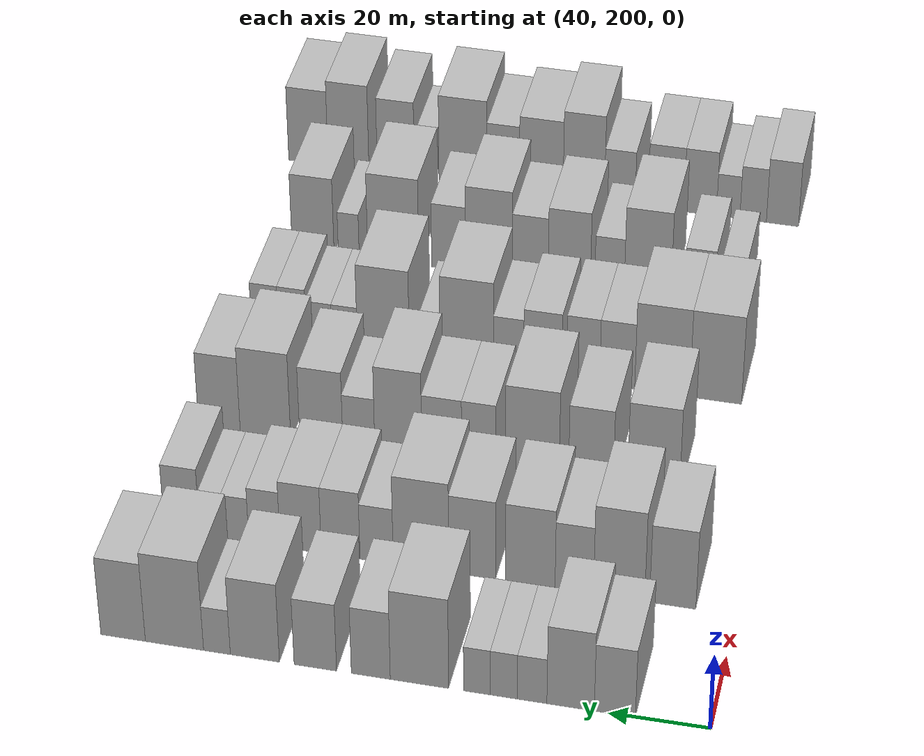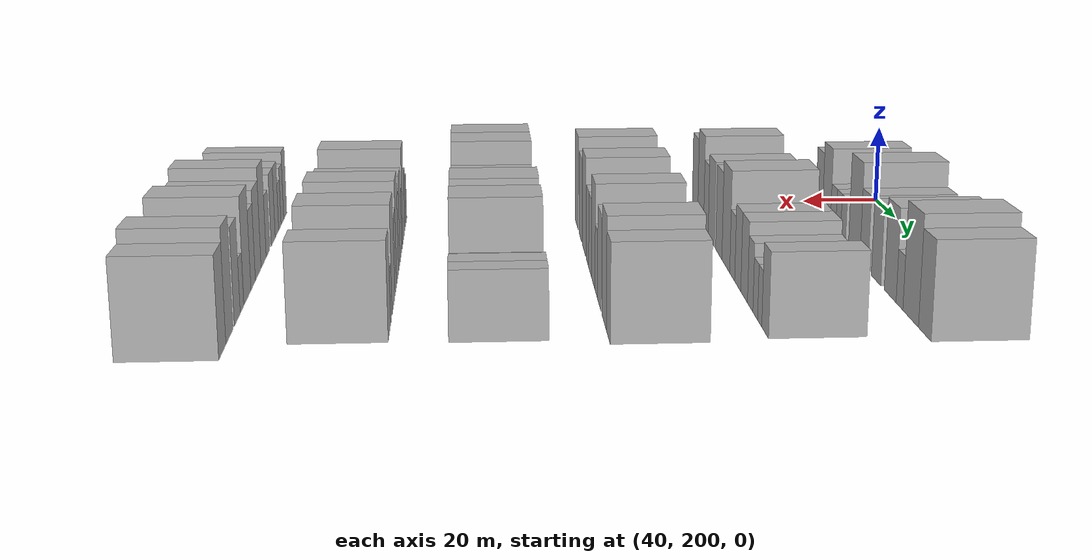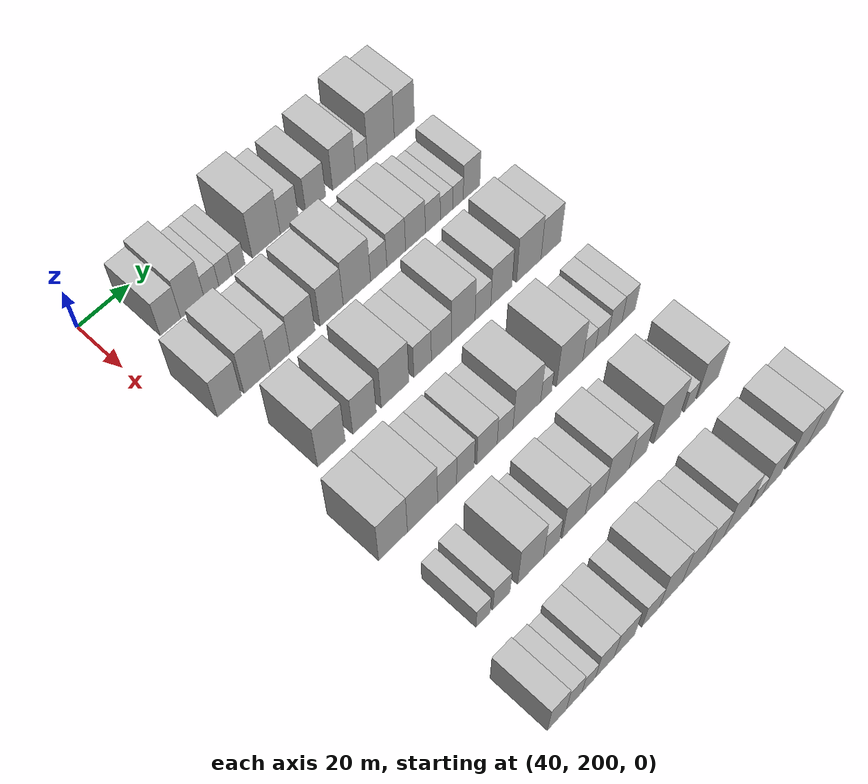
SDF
<sdf version="1.6">
 <world name="default">
  <model name="building_85">
   <static>1</static>
   <pose>50.0000 218.7896 0 0.000000 0.000000 0.000000</pose>
   <link name="link">
    <pose>0 0 9.00 0 0 0</pose>
    <collision name="collision"><geometry><box><size>20.0000 8.1058 18.0000</size></box></geometry></collision>
    <visual name="visual">
     <cast_shadows>0</cast_shadows>
     <geometry><box><size>20.0000 8.1058 18.0000</size></box></geometry>
     <material>
      <script>
       <uri>model://HANNAS_wall/materials/scripts</uri>
       <uri>model://HANNAS_wall/materials/textures</uri>
       <name>vrc/HANNAS_wall</name>
      </script>
     </material>
    </visual>
   </link>
  </model>
  <model name="building_86">
   <static>1</static>
   <pose>50.0000 227.5365 0 0.000000 0.000000 0.000000</pose>
   <link name="link">
    <pose>0 0 10.50 0 0 0</pose>
    <collision name="collision"><geometry><box><size>20.0000 9.3882 21.0000</size></box></geometry></collision>
    <visual name="visual">
     <cast_shadows>0</cast_shadows>
     <geometry><box><size>20.0000 9.3882 21.0000</size></box></geometry>
     <material>
      <script>
       <uri>model://HANNAS_wall/materials/scripts</uri>
       <uri>model://HANNAS_wall/materials/textures</uri>
       <name>vrc/HANNAS_wall</name>
      </script>
     </material>
    </visual>
   </link>
  </model>
  <model name="building_87">
   <static>1</static>
   <pose>50.0000 235.1733 0 0.000000 0.000000 0.000000</pose>
   <link name="link">
    <pose>0 0 6.00 0 0 0</pose>
    <collision name="collision"><geometry><box><size>20.0000 5.8853 12.0000</size></box></geometry></collision>
    <visual name="visual">
     <cast_shadows>0</cast_shadows>
     <geometry><box><size>20.0000 5.8853 12.0000</size></box></geometry>
     <material>
      <script>
       <uri>model://HANNAS_wall/materials/scripts</uri>
       <uri>model://HANNAS_wall/materials/textures</uri>
       <name>vrc/HANNAS_wall</name>
      </script>
     </material>
    </visual>
   </link>
  </model>
  <model name="building_88">
   <static>1</static>
   <pose>50.0000 240.8105 0 0.000000 0.000000 0.000000</pose>
   <link name="link">
    <pose>0 0 6.00 0 0 0</pose>
    <collision name="collision"><geometry><box><size>20.0000 5.3891 12.0000</size></box></geometry></collision>
    <visual name="visual">
     <cast_shadows>0</cast_shadows>
     <geometry><box><size>20.0000 5.3891 12.0000</size></box></geometry>
     <material>
      <script>
       <uri>model://HANNAS_wall/materials/scripts</uri>
       <uri>model://HANNAS_wall/materials/textures</uri>
       <name>vrc/HANNAS_wall</name>
      </script>
     </material>
    </visual>
   </link>
  </model>
  <model name="building_89">
   <static>1</static>
   <pose>50.0000 246.1669 0 0.000000 0.000000 0.000000</pose>
   <link name="link">
    <pose>0 0 6.00 0 0 0</pose>
    <collision name="collision"><geometry><box><size>20.0000 5.3238 12.0000</size></box></geometry></collision>
    <visual name="visual">
     <cast_shadows>0</cast_shadows>
     <geometry><box><size>20.0000 5.3238 12.0000</size></box></geometry>
     <material>
      <script>
       <uri>model://HANNAS_wall/materials/scripts</uri>
       <uri>model://HANNAS_wall/materials/textures</uri>
       <name>vrc/HANNAS_wall</name>
      </script>
     </material>
    </visual>
   </link>
  </model>
  <model name="building_90">
   <static>1</static>
   <pose>50.0000 257.6862 0 0.000000 0.000000 0.000000</pose>
   <link name="link">
    <pose>0 0 12.00 0 0 0</pose>
    <collision name="collision"><geometry><box><size>20.0000 11.7147 24.0000</size></box></geometry></collision>
    <visual name="visual">
     <cast_shadows>0</cast_shadows>
     <geometry><box><size>20.0000 11.7147 24.0000</size></box></geometry>
     <material>
      <script>
       <uri>model://HANNAS_wall/materials/scripts</uri>
       <uri>model://HANNAS_wall/materials/textures</uri>
       <name>vrc/HANNAS_wall</name>
      </script>
     </material>
    </visual>
   </link>
  </model>
  <model name="building_91">
   <static>1</static>
   <pose>50.0000 267.4687 0 0.000000 0.000000 0.000000</pose>
   <link name="link">
    <pose>0 0 9.00 0 0 0</pose>
    <collision name="collision"><geometry><box><size>20.0000 7.8502 18.0000</size></box></geometry></collision>
    <visual name="visual">
     <cast_shadows>0</cast_shadows>
     <geometry><box><size>20.0000 7.8502 18.0000</size></box></geometry>
     <material>
      <script>
       <uri>model://HANNAS_wall/materials/scripts</uri>
       <uri>model://HANNAS_wall/materials/textures</uri>
       <name>vrc/HANNAS_wall</name>
      </script>
     </material>
    </visual>
   </link>
  </model>
  <model name="building_92">
   <static>1</static>
   <pose>50.0000 278.6966 0 0.000000 0.000000 0.000000</pose>
   <link name="link">
    <pose>0 0 9.00 0 0 0</pose>
    <collision name="collision"><geometry><box><size>20.0000 8.6055 18.0000</size></box></geometry></collision>
    <visual name="visual">
     <cast_shadows>0</cast_shadows>
     <geometry><box><size>20.0000 8.6055 18.0000</size></box></geometry>
     <material>
      <script>
       <uri>model://HANNAS_wall/materials/scripts</uri>
       <uri>model://HANNAS_wall/materials/textures</uri>
       <name>vrc/HANNAS_wall</name>
      </script>
     </material>
    </visual>
   </link>
  </model>
  <model name="building_93">
   <static>1</static>
   <pose>50.0000 291.0090 0 0.000000 0.000000 0.000000</pose>
   <link name="link">
    <pose>0 0 10.50 0 0 0</pose>
    <collision name="collision"><geometry><box><size>20.0000 10.0194 21.0000</size></box></geometry></collision>
    <visual name="visual">
     <cast_shadows>0</cast_shadows>
     <geometry><box><size>20.0000 10.0194 21.0000</size></box></geometry>
     <material>
      <script>
       <uri>model://HANNAS_wall/materials/scripts</uri>
       <uri>model://HANNAS_wall/materials/textures</uri>
       <name>vrc/HANNAS_wall</name>
      </script>
     </material>
    </visual>
   </link>
  </model>
  <model name="building_94">
   <static>1</static>
   <pose>50.0000 298.7575 0 0.000000 0.000000 0.000000</pose>
   <link name="link">
    <pose>0 0 6.00 0 0 0</pose>
    <collision name="collision"><geometry><box><size>20.0000 5.4776 12.0000</size></box></geometry></collision>
    <visual name="visual">
     <cast_shadows>0</cast_shadows>
     <geometry><box><size>20.0000 5.4776 12.0000</size></box></geometry>
     <material>
      <script>
       <uri>model://HANNAS_wall/materials/scripts</uri>
       <uri>model://HANNAS_wall/materials/textures</uri>
       <name>vrc/HANNAS_wall</name>
      </script>
     </material>
    </visual>
   </link>
  </model>
  <model name="building_95">
   <static>1</static>
   <pose>50.0000 307.4810 0 0.000000 0.000000 0.000000</pose>
   <link name="link">
    <pose>0 0 12.00 0 0 0</pose>
    <collision name="collision"><geometry><box><size>20.0000 11.9693 24.0000</size></box></geometry></collision>
    <visual name="visual">
     <cast_shadows>0</cast_shadows>
     <geometry><box><size>20.0000 11.9693 24.0000</size></box></geometry>
     <material>
      <script>
       <uri>model://HANNAS_wall/materials/scripts</uri>
       <uri>model://HANNAS_wall/materials/textures</uri>
       <name>vrc/HANNAS_wall</name>
      </script>
     </material>
    </visual>
   </link>
  </model>
  <model name="building_96">
   <static>1</static>
   <pose>50.0000 318.0610 0 0.000000 0.000000 0.000000</pose>
   <link name="link">
    <pose>0 0 10.50 0 0 0</pose>
    <collision name="collision"><geometry><box><size>20.0000 9.1909 21.0000</size></box></geometry></collision>
    <visual name="visual">
     <cast_shadows>0</cast_shadows>
     <geometry><box><size>20.0000 9.1909 21.0000</size></box></geometry>
     <material>
      <script>
       <uri>model://HANNAS_wall/materials/scripts</uri>
       <uri>model://HANNAS_wall/materials/textures</uri>
       <name>vrc/HANNAS_wall</name>
      </script>
     </material>
    </visual>
   </link>
  </model>
  <model name="building_209">
   <static>1</static>
   <pose>82.0000 212.9217 0 0.000000 0.000000 0.000000</pose>
   <link name="link">
    <pose>0 0 10.50 0 0 0</pose>
    <collision name="collision"><geometry><box><size>20.0000 9.4045 21.0000</size></box></geometry></collision>
    <visual name="visual">
     <cast_shadows>0</cast_shadows>
     <geometry><box><size>20.0000 9.4045 21.0000</size></box></geometry>
     <material>
      <script>
       <uri>model://HANNAS_wall/materials/scripts</uri>
       <uri>model://HANNAS_wall/materials/textures</uri>
       <name>vrc/HANNAS_wall</name>
      </script>
     </material>
    </visual>
   </link>
  </model>
  <model name="building_210">
   <static>1</static>
   <pose>82.0000 223.8600 0 0.000000 0.000000 0.000000</pose>
   <link name="link">
    <pose>0 0 12.00 0 0 0</pose>
    <collision name="collision"><geometry><box><size>20.0000 10.4719 24.0000</size></box></geometry></collision>
    <visual name="visual">
     <cast_shadows>0</cast_shadows>
     <geometry><box><size>20.0000 10.4719 24.0000</size></box></geometry>
     <material>
      <script>
       <uri>model://HANNAS_wall/materials/scripts</uri>
       <uri>model://HANNAS_wall/materials/textures</uri>
       <name>vrc/HANNAS_wall</name>
      </script>
     </material>
    </visual>
   </link>
  </model>
  <model name="building_211">
   <static>1</static>
   <pose>82.0000 233.0404 0 0.000000 0.000000 0.000000</pose>
   <link name="link">
    <pose>0 0 9.00 0 0 0</pose>
    <collision name="collision"><geometry><box><size>20.0000 7.8888 18.0000</size></box></geometry></collision>
    <visual name="visual">
     <cast_shadows>0</cast_shadows>
     <geometry><box><size>20.0000 7.8888 18.0000</size></box></geometry>
     <material>
      <script>
       <uri>model://HANNAS_wall/materials/scripts</uri>
       <uri>model://HANNAS_wall/materials/textures</uri>
       <name>vrc/HANNAS_wall</name>
      </script>
     </material>
    </visual>
   </link>
  </model>
  <model name="building_212">
   <static>1</static>
   <pose>82.0000 242.1101 0 0.000000 0.000000 0.000000</pose>
   <link name="link">
    <pose>0 0 10.50 0 0 0</pose>
    <collision name="collision"><geometry><box><size>20.0000 10.2505 21.0000</size></box></geometry></collision>
    <visual name="visual">
     <cast_shadows>0</cast_shadows>
     <geometry><box><size>20.0000 10.2505 21.0000</size></box></geometry>
     <material>
      <script>
       <uri>model://HANNAS_wall/materials/scripts</uri>
       <uri>model://HANNAS_wall/materials/textures</uri>
       <name>vrc/HANNAS_wall</name>
      </script>
     </material>
    </visual>
   </link>
  </model>
  <model name="building_213">
   <static>1</static>
   <pose>82.0000 254.0916 0 0.000000 0.000000 0.000000</pose>
   <link name="link">
    <pose>0 0 10.50 0 0 0</pose>
    <collision name="collision"><geometry><box><size>20.0000 9.7125 21.0000</size></box></geometry></collision>
    <visual name="visual">
     <cast_shadows>0</cast_shadows>
     <geometry><box><size>20.0000 9.7125 21.0000</size></box></geometry>
     <material>
      <script>
       <uri>model://HANNAS_wall/materials/scripts</uri>
       <uri>model://HANNAS_wall/materials/textures</uri>
       <name>vrc/HANNAS_wall</name>
      </script>
     </material>
    </visual>
   </link>
  </model>
  <model name="building_214">
   <static>1</static>
   <pose>82.0000 264.7324 0 0.000000 0.000000 0.000000</pose>
   <link name="link">
    <pose>0 0 12.00 0 0 0</pose>
    <collision name="collision"><geometry><box><size>20.0000 11.5691 24.0000</size></box></geometry></collision>
    <visual name="visual">
     <cast_shadows>0</cast_shadows>
     <geometry><box><size>20.0000 11.5691 24.0000</size></box></geometry>
     <material>
      <script>
       <uri>model://HANNAS_wall/materials/scripts</uri>
       <uri>model://HANNAS_wall/materials/textures</uri>
       <name>vrc/HANNAS_wall</name>
      </script>
     </material>
    </visual>
   </link>
  </model>
  <model name="building_215">
   <static>1</static>
   <pose>82.0000 273.9888 0 0.000000 0.000000 0.000000</pose>
   <link name="link">
    <pose>0 0 7.50 0 0 0</pose>
    <collision name="collision"><geometry><box><size>20.0000 6.9437 15.0000</size></box></geometry></collision>
    <visual name="visual">
     <cast_shadows>0</cast_shadows>
     <geometry><box><size>20.0000 6.9437 15.0000</size></box></geometry>
     <material>
      <script>
       <uri>model://HANNAS_wall/materials/scripts</uri>
       <uri>model://HANNAS_wall/materials/textures</uri>
       <name>vrc/HANNAS_wall</name>
      </script>
     </material>
    </visual>
   </link>
  </model>
  <model name="building_216">
   <static>1</static>
   <pose>82.0000 281.5194 0 0.000000 0.000000 0.000000</pose>
   <link name="link">
    <pose>0 0 9.00 0 0 0</pose>
    <collision name="collision"><geometry><box><size>20.0000 8.1176 18.0000</size></box></geometry></collision>
    <visual name="visual">
     <cast_shadows>0</cast_shadows>
     <geometry><box><size>20.0000 8.1176 18.0000</size></box></geometry>
     <material>
      <script>
       <uri>model://HANNAS_wall/materials/scripts</uri>
       <uri>model://HANNAS_wall/materials/textures</uri>
       <name>vrc/HANNAS_wall</name>
      </script>
     </material>
    </visual>
   </link>
  </model>
  <model name="building_217">
   <static>1</static>
   <pose>82.0000 289.9159 0 0.000000 0.000000 0.000000</pose>
   <link name="link">
    <pose>0 0 9.00 0 0 0</pose>
    <collision name="collision"><geometry><box><size>20.0000 8.6755 18.0000</size></box></geometry></collision>
    <visual name="visual">
     <cast_shadows>0</cast_shadows>
     <geometry><box><size>20.0000 8.6755 18.0000</size></box></geometry>
     <material>
      <script>
       <uri>model://HANNAS_wall/materials/scripts</uri>
       <uri>model://HANNAS_wall/materials/textures</uri>
       <name>vrc/HANNAS_wall</name>
      </script>
     </material>
    </visual>
   </link>
  </model>
  <model name="building_218">
   <static>1</static>
   <pose>82.0000 297.5646 0 0.000000 0.000000 0.000000</pose>
   <link name="link">
    <pose>0 0 7.50 0 0 0</pose>
    <collision name="collision"><geometry><box><size>20.0000 6.6217 15.0000</size></box></geometry></collision>
    <visual name="visual">
     <cast_shadows>0</cast_shadows>
     <geometry><box><size>20.0000 6.6217 15.0000</size></box></geometry>
     <material>
      <script>
       <uri>model://HANNAS_wall/materials/scripts</uri>
       <uri>model://HANNAS_wall/materials/textures</uri>
       <name>vrc/HANNAS_wall</name>
      </script>
     </material>
    </visual>
   </link>
  </model>
  <model name="building_219">
   <static>1</static>
   <pose>82.0000 303.6491 0 0.000000 0.000000 0.000000</pose>
   <link name="link">
    <pose>0 0 6.00 0 0 0</pose>
    <collision name="collision"><geometry><box><size>20.0000 5.5474 12.0000</size></box></geometry></collision>
    <visual name="visual">
     <cast_shadows>0</cast_shadows>
     <geometry><box><size>20.0000 5.5474 12.0000</size></box></geometry>
     <material>
      <script>
       <uri>model://HANNAS_wall/materials/scripts</uri>
       <uri>model://HANNAS_wall/materials/textures</uri>
       <name>vrc/HANNAS_wall</name>
      </script>
     </material>
    </visual>
   </link>
  </model>
  <model name="building_220">
   <static>1</static>
   <pose>82.0000 308.8416 0 0.000000 0.000000 0.000000</pose>
   <link name="link">
    <pose>0 0 6.00 0 0 0</pose>
    <collision name="collision"><geometry><box><size>20.0000 4.8376 12.0000</size></box></geometry></collision>
    <visual name="visual">
     <cast_shadows>0</cast_shadows>
     <geometry><box><size>20.0000 4.8376 12.0000</size></box></geometry>
     <material>
      <script>
       <uri>model://HANNAS_wall/materials/scripts</uri>
       <uri>model://HANNAS_wall/materials/textures</uri>
       <name>vrc/HANNAS_wall</name>
      </script>
     </material>
    </visual>
   </link>
  </model>
  <model name="building_221">
   <static>1</static>
   <pose>82.0000 315.0397 0 0.000000 0.000000 0.000000</pose>
   <link name="link">
    <pose>0 0 9.00 0 0 0</pose>
    <collision name="collision"><geometry><box><size>20.0000 7.5588 18.0000</size></box></geometry></collision>
    <visual name="visual">
     <cast_shadows>0</cast_shadows>
     <geometry><box><size>20.0000 7.5588 18.0000</size></box></geometry>
     <material>
      <script>
       <uri>model://HANNAS_wall/materials/scripts</uri>
       <uri>model://HANNAS_wall/materials/textures</uri>
       <name>vrc/HANNAS_wall</name>
      </script>
     </material>
    </visual>
   </link>
  </model>
  <model name="building_334">
   <static>1</static>
   <pose>114.0000 222.5123 0 0.000000 0.000000 0.000000</pose>
   <link name="link">
    <pose>0 0 12.00 0 0 0</pose>
    <collision name="collision"><geometry><box><size>20.0000 10.9758 24.0000</size></box></geometry></collision>
    <visual name="visual">
     <cast_shadows>0</cast_shadows>
     <geometry><box><size>20.0000 10.9758 24.0000</size></box></geometry>
     <material>
      <script>
       <uri>model://HANNAS_wall/materials/scripts</uri>
       <uri>model://HANNAS_wall/materials/textures</uri>
       <name>vrc/HANNAS_wall</name>
      </script>
     </material>
    </visual>
   </link>
  </model>
  <model name="building_335">
   <static>1</static>
   <pose>114.0000 235.7473 0 0.000000 0.000000 0.000000</pose>
   <link name="link">
    <pose>0 0 10.50 0 0 0</pose>
    <collision name="collision"><geometry><box><size>20.0000 9.4942 21.0000</size></box></geometry></collision>
    <visual name="visual">
     <cast_shadows>0</cast_shadows>
     <geometry><box><size>20.0000 9.4942 21.0000</size></box></geometry>
     <material>
      <script>
       <uri>model://HANNAS_wall/materials/scripts</uri>
       <uri>model://HANNAS_wall/materials/textures</uri>
       <name>vrc/HANNAS_wall</name>
      </script>
     </material>
    </visual>
   </link>
  </model>
  <model name="building_336">
   <static>1</static>
   <pose>114.0000 248.2364 0 0.000000 0.000000 0.000000</pose>
   <link name="link">
    <pose>0 0 12.00 0 0 0</pose>
    <collision name="collision"><geometry><box><size>20.0000 11.4842 24.0000</size></box></geometry></collision>
    <visual name="visual">
     <cast_shadows>0</cast_shadows>
     <geometry><box><size>20.0000 11.4842 24.0000</size></box></geometry>
     <material>
      <script>
       <uri>model://HANNAS_wall/materials/scripts</uri>
       <uri>model://HANNAS_wall/materials/textures</uri>
       <name>vrc/HANNAS_wall</name>
      </script>
     </material>
    </visual>
   </link>
  </model>
  <model name="building_337">
   <static>1</static>
   <pose>114.0000 259.6599 0 0.000000 0.000000 0.000000</pose>
   <link name="link">
    <pose>0 0 9.00 0 0 0</pose>
    <collision name="collision"><geometry><box><size>20.0000 7.3628 18.0000</size></box></geometry></collision>
    <visual name="visual">
     <cast_shadows>0</cast_shadows>
     <geometry><box><size>20.0000 7.3628 18.0000</size></box></geometry>
     <material>
      <script>
       <uri>model://HANNAS_wall/materials/scripts</uri>
       <uri>model://HANNAS_wall/materials/textures</uri>
       <name>vrc/HANNAS_wall</name>
      </script>
     </material>
    </visual>
   </link>
  </model>
  <model name="building_338">
   <static>1</static>
   <pose>114.0000 267.6207 0 0.000000 0.000000 0.000000</pose>
   <link name="link">
    <pose>0 0 9.00 0 0 0</pose>
    <collision name="collision"><geometry><box><size>20.0000 8.5588 18.0000</size></box></geometry></collision>
    <visual name="visual">
     <cast_shadows>0</cast_shadows>
     <geometry><box><size>20.0000 8.5588 18.0000</size></box></geometry>
     <material>
      <script>
       <uri>model://HANNAS_wall/materials/scripts</uri>
       <uri>model://HANNAS_wall/materials/textures</uri>
       <name>vrc/HANNAS_wall</name>
      </script>
     </material>
    </visual>
   </link>
  </model>
  <model name="building_339">
   <static>1</static>
   <pose>114.0000 276.9744 0 0.000000 0.000000 0.000000</pose>
   <link name="link">
    <pose>0 0 12.00 0 0 0</pose>
    <collision name="collision"><geometry><box><size>20.0000 10.1486 24.0000</size></box></geometry></collision>
    <visual name="visual">
     <cast_shadows>0</cast_shadows>
     <geometry><box><size>20.0000 10.1486 24.0000</size></box></geometry>
     <material>
      <script>
       <uri>model://HANNAS_wall/materials/scripts</uri>
       <uri>model://HANNAS_wall/materials/textures</uri>
       <name>vrc/HANNAS_wall</name>
      </script>
     </material>
    </visual>
   </link>
  </model>
  <model name="building_340">
   <static>1</static>
   <pose>114.0000 285.5117 0 0.000000 0.000000 0.000000</pose>
   <link name="link">
    <pose>0 0 7.50 0 0 0</pose>
    <collision name="collision"><geometry><box><size>20.0000 6.9259 15.0000</size></box></geometry></collision>
    <visual name="visual">
     <cast_shadows>0</cast_shadows>
     <geometry><box><size>20.0000 6.9259 15.0000</size></box></geometry>
     <material>
      <script>
       <uri>model://HANNAS_wall/materials/scripts</uri>
       <uri>model://HANNAS_wall/materials/textures</uri>
       <name>vrc/HANNAS_wall</name>
      </script>
     </material>
    </visual>
   </link>
  </model>
  <model name="building_341">
   <static>1</static>
   <pose>114.0000 293.6670 0 0.000000 0.000000 0.000000</pose>
   <link name="link">
    <pose>0 0 10.50 0 0 0</pose>
    <collision name="collision"><geometry><box><size>20.0000 9.3847 21.0000</size></box></geometry></collision>
    <visual name="visual">
     <cast_shadows>0</cast_shadows>
     <geometry><box><size>20.0000 9.3847 21.0000</size></box></geometry>
     <material>
      <script>
       <uri>model://HANNAS_wall/materials/scripts</uri>
       <uri>model://HANNAS_wall/materials/textures</uri>
       <name>vrc/HANNAS_wall</name>
      </script>
     </material>
    </visual>
   </link>
  </model>
  <model name="building_342">
   <static>1</static>
   <pose>114.0000 305.8833 0 0.000000 0.000000 0.000000</pose>
   <link name="link">
    <pose>0 0 12.00 0 0 0</pose>
    <collision name="collision"><geometry><box><size>20.0000 11.0479 24.0000</size></box></geometry></collision>
    <visual name="visual">
     <cast_shadows>0</cast_shadows>
     <geometry><box><size>20.0000 11.0479 24.0000</size></box></geometry>
     <material>
      <script>
       <uri>model://HANNAS_wall/materials/scripts</uri>
       <uri>model://HANNAS_wall/materials/textures</uri>
       <name>vrc/HANNAS_wall</name>
      </script>
     </material>
    </visual>
   </link>
  </model>
  <model name="building_343">
   <static>1</static>
   <pose>114.0000 315.9752 0 0.000000 0.000000 0.000000</pose>
   <link name="link">
    <pose>0 0 10.50 0 0 0</pose>
    <collision name="collision"><geometry><box><size>20.0000 9.1359 21.0000</size></box></geometry></collision>
    <visual name="visual">
     <cast_shadows>0</cast_shadows>
     <geometry><box><size>20.0000 9.1359 21.0000</size></box></geometry>
     <material>
      <script>
       <uri>model://HANNAS_wall/materials/scripts</uri>
       <uri>model://HANNAS_wall/materials/textures</uri>
       <name>vrc/HANNAS_wall</name>
      </script>
     </material>
    </visual>
   </link>
  </model>
  <model name="building_450">
   <static>1</static>
   <pose>146.0000 214.5870 0 0.000000 0.000000 0.000000</pose>
   <link name="link">
    <pose>0 0 12.00 0 0 0</pose>
    <collision name="collision"><geometry><box><size>20.0000 11.2908 24.0000</size></box></geometry></collision>
    <visual name="visual">
     <cast_shadows>0</cast_shadows>
     <geometry><box><size>20.0000 11.2908 24.0000</size></box></geometry>
     <material>
      <script>
       <uri>model://HANNAS_wall/materials/scripts</uri>
       <uri>model://HANNAS_wall/materials/textures</uri>
       <name>vrc/HANNAS_wall</name>
      </script>
     </material>
    </visual>
   </link>
  </model>
  <model name="building_451">
   <static>1</static>
   <pose>146.0000 226.2263 0 0.000000 0.000000 0.000000</pose>
   <link name="link">
    <pose>0 0 12.00 0 0 0</pose>
    <collision name="collision"><geometry><box><size>20.0000 11.9878 24.0000</size></box></geometry></collision>
    <visual name="visual">
     <cast_shadows>0</cast_shadows>
     <geometry><box><size>20.0000 11.9878 24.0000</size></box></geometry>
     <material>
      <script>
       <uri>model://HANNAS_wall/materials/scripts</uri>
       <uri>model://HANNAS_wall/materials/textures</uri>
       <name>vrc/HANNAS_wall</name>
      </script>
     </material>
    </visual>
   </link>
  </model>
  <model name="building_452">
   <static>1</static>
   <pose>146.0000 236.0647 0 0.000000 0.000000 0.000000</pose>
   <link name="link">
    <pose>0 0 9.00 0 0 0</pose>
    <collision name="collision"><geometry><box><size>20.0000 7.6889 18.0000</size></box></geometry></collision>
    <visual name="visual">
     <cast_shadows>0</cast_shadows>
     <geometry><box><size>20.0000 7.6889 18.0000</size></box></geometry>
     <material>
      <script>
       <uri>model://HANNAS_wall/materials/scripts</uri>
       <uri>model://HANNAS_wall/materials/textures</uri>
       <name>vrc/HANNAS_wall</name>
      </script>
     </material>
    </visual>
   </link>
  </model>
  <model name="building_453">
   <static>1</static>
   <pose>146.0000 243.5633 0 0.000000 0.000000 0.000000</pose>
   <link name="link">
    <pose>0 0 9.00 0 0 0</pose>
    <collision name="collision"><geometry><box><size>20.0000 7.3082 18.0000</size></box></geometry></collision>
    <visual name="visual">
     <cast_shadows>0</cast_shadows>
     <geometry><box><size>20.0000 7.3082 18.0000</size></box></geometry>
     <material>
      <script>
       <uri>model://HANNAS_wall/materials/scripts</uri>
       <uri>model://HANNAS_wall/materials/textures</uri>
       <name>vrc/HANNAS_wall</name>
      </script>
     </material>
    </visual>
   </link>
  </model>
  <model name="building_454">
   <static>1</static>
   <pose>146.0000 252.4431 0 0.000000 0.000000 0.000000</pose>
   <link name="link">
    <pose>0 0 9.00 0 0 0</pose>
    <collision name="collision"><geometry><box><size>20.0000 8.4514 18.0000</size></box></geometry></collision>
    <visual name="visual">
     <cast_shadows>0</cast_shadows>
     <geometry><box><size>20.0000 8.4514 18.0000</size></box></geometry>
     <material>
      <script>
       <uri>model://HANNAS_wall/materials/scripts</uri>
       <uri>model://HANNAS_wall/materials/textures</uri>
       <name>vrc/HANNAS_wall</name>
      </script>
     </material>
    </visual>
   </link>
  </model>
  <model name="building_455">
   <static>1</static>
   <pose>146.0000 260.0101 0 0.000000 0.000000 0.000000</pose>
   <link name="link">
    <pose>0 0 7.50 0 0 0</pose>
    <collision name="collision"><geometry><box><size>20.0000 6.6825 15.0000</size></box></geometry></collision>
    <visual name="visual">
     <cast_shadows>0</cast_shadows>
     <geometry><box><size>20.0000 6.6825 15.0000</size></box></geometry>
     <material>
      <script>
       <uri>model://HANNAS_wall/materials/scripts</uri>
       <uri>model://HANNAS_wall/materials/textures</uri>
       <name>vrc/HANNAS_wall</name>
      </script>
     </material>
    </visual>
   </link>
  </model>
  <model name="building_456">
   <static>1</static>
   <pose>146.0000 269.2847 0 0.000000 0.000000 0.000000</pose>
   <link name="link">
    <pose>0 0 12.00 0 0 0</pose>
    <collision name="collision"><geometry><box><size>20.0000 11.8668 24.0000</size></box></geometry></collision>
    <visual name="visual">
     <cast_shadows>0</cast_shadows>
     <geometry><box><size>20.0000 11.8668 24.0000</size></box></geometry>
     <material>
      <script>
       <uri>model://HANNAS_wall/materials/scripts</uri>
       <uri>model://HANNAS_wall/materials/textures</uri>
       <name>vrc/HANNAS_wall</name>
      </script>
     </material>
    </visual>
   </link>
  </model>
  <model name="building_457">
   <static>1</static>
   <pose>146.0000 277.6303 0 0.000000 0.000000 0.000000</pose>
   <link name="link">
    <pose>0 0 6.00 0 0 0</pose>
    <collision name="collision"><geometry><box><size>20.0000 4.8244 12.0000</size></box></geometry></collision>
    <visual name="visual">
     <cast_shadows>0</cast_shadows>
     <geometry><box><size>20.0000 4.8244 12.0000</size></box></geometry>
     <material>
      <script>
       <uri>model://HANNAS_wall/materials/scripts</uri>
       <uri>model://HANNAS_wall/materials/textures</uri>
       <name>vrc/HANNAS_wall</name>
      </script>
     </material>
    </visual>
   </link>
  </model>
  <model name="building_458">
   <static>1</static>
   <pose>146.0000 287.8606 0 0.000000 0.000000 0.000000</pose>
   <link name="link">
    <pose>0 0 12.00 0 0 0</pose>
    <collision name="collision"><geometry><box><size>20.0000 11.6363 24.0000</size></box></geometry></collision>
    <visual name="visual">
     <cast_shadows>0</cast_shadows>
     <geometry><box><size>20.0000 11.6363 24.0000</size></box></geometry>
     <material>
      <script>
       <uri>model://HANNAS_wall/materials/scripts</uri>
       <uri>model://HANNAS_wall/materials/textures</uri>
       <name>vrc/HANNAS_wall</name>
      </script>
     </material>
    </visual>
   </link>
  </model>
  <model name="building_459">
   <static>1</static>
   <pose>146.0000 296.5361 0 0.000000 0.000000 0.000000</pose>
   <link name="link">
    <pose>0 0 6.00 0 0 0</pose>
    <collision name="collision"><geometry><box><size>20.0000 5.7148 12.0000</size></box></geometry></collision>
    <visual name="visual">
     <cast_shadows>0</cast_shadows>
     <geometry><box><size>20.0000 5.7148 12.0000</size></box></geometry>
     <material>
      <script>
       <uri>model://HANNAS_wall/materials/scripts</uri>
       <uri>model://HANNAS_wall/materials/textures</uri>
       <name>vrc/HANNAS_wall</name>
      </script>
     </material>
    </visual>
   </link>
  </model>
  <model name="building_460">
   <static>1</static>
   <pose>146.0000 302.2922 0 0.000000 0.000000 0.000000</pose>
   <link name="link">
    <pose>0 0 6.00 0 0 0</pose>
    <collision name="collision"><geometry><box><size>20.0000 5.7975 12.0000</size></box></geometry></collision>
    <visual name="visual">
     <cast_shadows>0</cast_shadows>
     <geometry><box><size>20.0000 5.7975 12.0000</size></box></geometry>
     <material>
      <script>
       <uri>model://HANNAS_wall/materials/scripts</uri>
       <uri>model://HANNAS_wall/materials/textures</uri>
       <name>vrc/HANNAS_wall</name>
      </script>
     </material>
    </visual>
   </link>
  </model>
  <model name="building_461">
   <static>1</static>
   <pose>146.0000 308.2961 0 0.000000 0.000000 0.000000</pose>
   <link name="link">
    <pose>0 0 7.50 0 0 0</pose>
    <collision name="collision"><geometry><box><size>20.0000 6.2101 15.0000</size></box></geometry></collision>
    <visual name="visual">
     <cast_shadows>0</cast_shadows>
     <geometry><box><size>20.0000 6.2101 15.0000</size></box></geometry>
     <material>
      <script>
       <uri>model://HANNAS_wall/materials/scripts</uri>
       <uri>model://HANNAS_wall/materials/textures</uri>
       <name>vrc/HANNAS_wall</name>
      </script>
     </material>
    </visual>
   </link>
  </model>
  <model name="building_462">
   <static>1</static>
   <pose>146.0000 314.4598 0 0.000000 0.000000 0.000000</pose>
   <link name="link">
    <pose>0 0 7.50 0 0 0</pose>
    <collision name="collision"><geometry><box><size>20.0000 6.1173 15.0000</size></box></geometry></collision>
    <visual name="visual">
     <cast_shadows>0</cast_shadows>
     <geometry><box><size>20.0000 6.1173 15.0000</size></box></geometry>
     <material>
      <script>
       <uri>model://HANNAS_wall/materials/scripts</uri>
       <uri>model://HANNAS_wall/materials/textures</uri>
       <name>vrc/HANNAS_wall</name>
      </script>
     </material>
    </visual>
   </link>
  </model>
  <model name="building_572">
   <static>1</static>
   <pose>178.0000 216.1555 0 0.000000 0.000000 0.000000</pose>
   <link name="link">
    <pose>0 0 6.00 0 0 0</pose>
    <collision name="collision"><geometry><box><size>20.0000 5.5846 12.0000</size></box></geometry></collision>
    <visual name="visual">
     <cast_shadows>0</cast_shadows>
     <geometry><box><size>20.0000 5.5846 12.0000</size></box></geometry>
     <material>
      <script>
       <uri>model://HANNAS_wall/materials/scripts</uri>
       <uri>model://HANNAS_wall/materials/textures</uri>
       <name>vrc/HANNAS_wall</name>
      </script>
     </material>
    </visual>
   </link>
  </model>
  <model name="building_573">
   <static>1</static>
   <pose>178.0000 223.3987 0 0.000000 0.000000 0.000000</pose>
   <link name="link">
    <pose>0 0 7.50 0 0 0</pose>
    <collision name="collision"><geometry><box><size>20.0000 6.9017 15.0000</size></box></geometry></collision>
    <visual name="visual">
     <cast_shadows>0</cast_shadows>
     <geometry><box><size>20.0000 6.9017 15.0000</size></box></geometry>
     <material>
      <script>
       <uri>model://HANNAS_wall/materials/scripts</uri>
       <uri>model://HANNAS_wall/materials/textures</uri>
       <name>vrc/HANNAS_wall</name>
      </script>
     </material>
    </visual>
   </link>
  </model>
  <model name="building_574">
   <static>1</static>
   <pose>178.0000 235.1221 0 0.000000 0.000000 0.000000</pose>
   <link name="link">
    <pose>0 0 12.00 0 0 0</pose>
    <collision name="collision"><geometry><box><size>20.0000 10.5450 24.0000</size></box></geometry></collision>
    <visual name="visual">
     <cast_shadows>0</cast_shadows>
     <geometry><box><size>20.0000 10.5450 24.0000</size></box></geometry>
     <material>
      <script>
       <uri>model://HANNAS_wall/materials/scripts</uri>
       <uri>model://HANNAS_wall/materials/textures</uri>
       <name>vrc/HANNAS_wall</name>
      </script>
     </material>
    </visual>
   </link>
  </model>
  <model name="building_575">
   <static>1</static>
   <pose>178.0000 243.7253 0 0.000000 0.000000 0.000000</pose>
   <link name="link">
    <pose>0 0 7.50 0 0 0</pose>
    <collision name="collision"><geometry><box><size>20.0000 6.6613 15.0000</size></box></geometry></collision>
    <visual name="visual">
     <cast_shadows>0</cast_shadows>
     <geometry><box><size>20.0000 6.6613 15.0000</size></box></geometry>
     <material>
      <script>
       <uri>model://HANNAS_wall/materials/scripts</uri>
       <uri>model://HANNAS_wall/materials/textures</uri>
       <name>vrc/HANNAS_wall</name>
      </script>
     </material>
    </visual>
   </link>
  </model>
  <model name="building_576">
   <static>1</static>
   <pose>178.0000 252.8632 0 0.000000 0.000000 0.000000</pose>
   <link name="link">
    <pose>0 0 10.50 0 0 0</pose>
    <collision name="collision"><geometry><box><size>20.0000 9.6145 21.0000</size></box></geometry></collision>
    <visual name="visual">
     <cast_shadows>0</cast_shadows>
     <geometry><box><size>20.0000 9.6145 21.0000</size></box></geometry>
     <material>
      <script>
       <uri>model://HANNAS_wall/materials/scripts</uri>
       <uri>model://HANNAS_wall/materials/textures</uri>
       <name>vrc/HANNAS_wall</name>
      </script>
     </material>
    </visual>
   </link>
  </model>
  <model name="building_577">
   <static>1</static>
   <pose>178.0000 261.7625 0 0.000000 0.000000 0.000000</pose>
   <link name="link">
    <pose>0 0 9.00 0 0 0</pose>
    <collision name="collision"><geometry><box><size>20.0000 8.1842 18.0000</size></box></geometry></collision>
    <visual name="visual">
     <cast_shadows>0</cast_shadows>
     <geometry><box><size>20.0000 8.1842 18.0000</size></box></geometry>
     <material>
      <script>
       <uri>model://HANNAS_wall/materials/scripts</uri>
       <uri>model://HANNAS_wall/materials/textures</uri>
       <name>vrc/HANNAS_wall</name>
      </script>
     </material>
    </visual>
   </link>
  </model>
  <model name="building_578">
   <static>1</static>
   <pose>178.0000 271.2204 0 0.000000 0.000000 0.000000</pose>
   <link name="link">
    <pose>0 0 12.00 0 0 0</pose>
    <collision name="collision"><geometry><box><size>20.0000 10.7315 24.0000</size></box></geometry></collision>
    <visual name="visual">
     <cast_shadows>0</cast_shadows>
     <geometry><box><size>20.0000 10.7315 24.0000</size></box></geometry>
     <material>
      <script>
       <uri>model://HANNAS_wall/materials/scripts</uri>
       <uri>model://HANNAS_wall/materials/textures</uri>
       <name>vrc/HANNAS_wall</name>
      </script>
     </material>
    </visual>
   </link>
  </model>
  <model name="building_579">
   <static>1</static>
   <pose>178.0000 280.4684 0 0.000000 0.000000 0.000000</pose>
   <link name="link">
    <pose>0 0 9.00 0 0 0</pose>
    <collision name="collision"><geometry><box><size>20.0000 7.7645 18.0000</size></box></geometry></collision>
    <visual name="visual">
     <cast_shadows>0</cast_shadows>
     <geometry><box><size>20.0000 7.7645 18.0000</size></box></geometry>
     <material>
      <script>
       <uri>model://HANNAS_wall/materials/scripts</uri>
       <uri>model://HANNAS_wall/materials/textures</uri>
       <name>vrc/HANNAS_wall</name>
      </script>
     </material>
    </visual>
   </link>
  </model>
  <model name="building_580">
   <static>1</static>
   <pose>178.0000 293.2361 0 0.000000 0.000000 0.000000</pose>
   <link name="link">
    <pose>0 0 12.00 0 0 0</pose>
    <collision name="collision"><geometry><box><size>20.0000 11.7709 24.0000</size></box></geometry></collision>
    <visual name="visual">
     <cast_shadows>0</cast_shadows>
     <geometry><box><size>20.0000 11.7709 24.0000</size></box></geometry>
     <material>
      <script>
       <uri>model://HANNAS_wall/materials/scripts</uri>
       <uri>model://HANNAS_wall/materials/textures</uri>
       <name>vrc/HANNAS_wall</name>
      </script>
     </material>
    </visual>
   </link>
  </model>
  <model name="building_581">
   <static>1</static>
   <pose>178.0000 303.5395 0 0.000000 0.000000 0.000000</pose>
   <link name="link">
    <pose>0 0 6.00 0 0 0</pose>
    <collision name="collision"><geometry><box><size>20.0000 4.8359 12.0000</size></box></geometry></collision>
    <visual name="visual">
     <cast_shadows>0</cast_shadows>
     <geometry><box><size>20.0000 4.8359 12.0000</size></box></geometry>
     <material>
      <script>
       <uri>model://HANNAS_wall/materials/scripts</uri>
       <uri>model://HANNAS_wall/materials/textures</uri>
       <name>vrc/HANNAS_wall</name>
      </script>
     </material>
    </visual>
   </link>
  </model>
  <model name="building_582">
   <static>1</static>
   <pose>178.0000 311.8464 0 0.000000 0.000000 0.000000</pose>
   <link name="link">
    <pose>0 0 10.50 0 0 0</pose>
    <collision name="collision"><geometry><box><size>20.0000 9.7780 21.0000</size></box></geometry></collision>
    <visual name="visual">
     <cast_shadows>0</cast_shadows>
     <geometry><box><size>20.0000 9.7780 21.0000</size></box></geometry>
     <material>
      <script>
       <uri>model://HANNAS_wall/materials/scripts</uri>
       <uri>model://HANNAS_wall/materials/textures</uri>
       <name>vrc/HANNAS_wall</name>
      </script>
     </material>
    </visual>
   </link>
  </model>
  <model name="building_694">
   <static>1</static>
   <pose>210.0000 209.4996 0 0.000000 0.000000 0.000000</pose>
   <link name="link">
    <pose>0 0 9.00 0 0 0</pose>
    <collision name="collision"><geometry><box><size>20.0000 7.4074 18.0000</size></box></geometry></collision>
    <visual name="visual">
     <cast_shadows>0</cast_shadows>
     <geometry><box><size>20.0000 7.4074 18.0000</size></box></geometry>
     <material>
      <script>
       <uri>model://HANNAS_wall/materials/scripts</uri>
       <uri>model://HANNAS_wall/materials/textures</uri>
       <name>vrc/HANNAS_wall</name>
      </script>
     </material>
    </visual>
   </link>
  </model>
  <model name="building_695">
   <static>1</static>
   <pose>210.0000 216.2607 0 0.000000 0.000000 0.000000</pose>
   <link name="link">
    <pose>0 0 7.50 0 0 0</pose>
    <collision name="collision"><geometry><box><size>20.0000 6.1147 15.0000</size></box></geometry></collision>
    <visual name="visual">
     <cast_shadows>0</cast_shadows>
     <geometry><box><size>20.0000 6.1147 15.0000</size></box></geometry>
     <material>
      <script>
       <uri>model://HANNAS_wall/materials/scripts</uri>
       <uri>model://HANNAS_wall/materials/textures</uri>
       <name>vrc/HANNAS_wall</name>
      </script>
     </material>
    </visual>
   </link>
  </model>
  <model name="building_696">
   <static>1</static>
   <pose>210.0000 222.0304 0 0.000000 0.000000 0.000000</pose>
   <link name="link">
    <pose>0 0 6.00 0 0 0</pose>
    <collision name="collision"><geometry><box><size>20.0000 5.4247 12.0000</size></box></geometry></collision>
    <visual name="visual">
     <cast_shadows>0</cast_shadows>
     <geometry><box><size>20.0000 5.4247 12.0000</size></box></geometry>
     <material>
      <script>
       <uri>model://HANNAS_wall/materials/scripts</uri>
       <uri>model://HANNAS_wall/materials/textures</uri>
       <name>vrc/HANNAS_wall</name>
      </script>
     </material>
    </visual>
   </link>
  </model>
  <model name="building_697">
   <static>1</static>
   <pose>210.0000 228.5314 0 0.000000 0.000000 0.000000</pose>
   <link name="link">
    <pose>0 0 9.00 0 0 0</pose>
    <collision name="collision"><geometry><box><size>20.0000 7.5775 18.0000</size></box></geometry></collision>
    <visual name="visual">
     <cast_shadows>0</cast_shadows>
     <geometry><box><size>20.0000 7.5775 18.0000</size></box></geometry>
     <material>
      <script>
       <uri>model://HANNAS_wall/materials/scripts</uri>
       <uri>model://HANNAS_wall/materials/textures</uri>
       <name>vrc/HANNAS_wall</name>
      </script>
     </material>
    </visual>
   </link>
  </model>
  <model name="building_698">
   <static>1</static>
   <pose>210.0000 236.4990 0 0.000000 0.000000 0.000000</pose>
   <link name="link">
    <pose>0 0 9.00 0 0 0</pose>
    <collision name="collision"><geometry><box><size>20.0000 8.3577 18.0000</size></box></geometry></collision>
    <visual name="visual">
     <cast_shadows>0</cast_shadows>
     <geometry><box><size>20.0000 8.3577 18.0000</size></box></geometry>
     <material>
      <script>
       <uri>model://HANNAS_wall/materials/scripts</uri>
       <uri>model://HANNAS_wall/materials/textures</uri>
       <name>vrc/HANNAS_wall</name>
      </script>
     </material>
    </visual>
   </link>
  </model>
  <model name="building_699">
   <static>1</static>
   <pose>210.0000 247.2769 0 0.000000 0.000000 0.000000</pose>
   <link name="link">
    <pose>0 0 7.50 0 0 0</pose>
    <collision name="collision"><geometry><box><size>20.0000 7.1980 15.0000</size></box></geometry></collision>
    <visual name="visual">
     <cast_shadows>0</cast_shadows>
     <geometry><box><size>20.0000 7.1980 15.0000</size></box></geometry>
     <material>
      <script>
       <uri>model://HANNAS_wall/materials/scripts</uri>
       <uri>model://HANNAS_wall/materials/textures</uri>
       <name>vrc/HANNAS_wall</name>
      </script>
     </material>
    </visual>
   </link>
  </model>
  <model name="building_700">
   <static>1</static>
   <pose>210.0000 255.7173 0 0.000000 0.000000 0.000000</pose>
   <link name="link">
    <pose>0 0 12.00 0 0 0</pose>
    <collision name="collision"><geometry><box><size>20.0000 9.6827 24.0000</size></box></geometry></collision>
    <visual name="visual">
     <cast_shadows>0</cast_shadows>
     <geometry><box><size>20.0000 9.6827 24.0000</size></box></geometry>
     <material>
      <script>
       <uri>model://HANNAS_wall/materials/scripts</uri>
       <uri>model://HANNAS_wall/materials/textures</uri>
       <name>vrc/HANNAS_wall</name>
      </script>
     </material>
    </visual>
   </link>
  </model>
  <model name="building_701">
   <static>1</static>
   <pose>210.0000 265.7098 0 0.000000 0.000000 0.000000</pose>
   <link name="link">
    <pose>0 0 10.50 0 0 0</pose>
    <collision name="collision"><geometry><box><size>20.0000 10.3024 21.0000</size></box></geometry></collision>
    <visual name="visual">
     <cast_shadows>0</cast_shadows>
     <geometry><box><size>20.0000 10.3024 21.0000</size></box></geometry>
     <material>
      <script>
       <uri>model://HANNAS_wall/materials/scripts</uri>
       <uri>model://HANNAS_wall/materials/textures</uri>
       <name>vrc/HANNAS_wall</name>
      </script>
     </material>
    </visual>
   </link>
  </model>
  <model name="building_702">
   <static>1</static>
   <pose>210.0000 274.7045 0 0.000000 0.000000 0.000000</pose>
   <link name="link">
    <pose>0 0 9.00 0 0 0</pose>
    <collision name="collision"><geometry><box><size>20.0000 7.6869 18.0000</size></box></geometry></collision>
    <visual name="visual">
     <cast_shadows>0</cast_shadows>
     <geometry><box><size>20.0000 7.6869 18.0000</size></box></geometry>
     <material>
      <script>
       <uri>model://HANNAS_wall/materials/scripts</uri>
       <uri>model://HANNAS_wall/materials/textures</uri>
       <name>vrc/HANNAS_wall</name>
      </script>
     </material>
    </visual>
   </link>
  </model>
  <model name="building_703">
   <static>1</static>
   <pose>210.0000 284.2155 0 0.000000 0.000000 0.000000</pose>
   <link name="link">
    <pose>0 0 12.00 0 0 0</pose>
    <collision name="collision"><geometry><box><size>20.0000 11.3351 24.0000</size></box></geometry></collision>
    <visual name="visual">
     <cast_shadows>0</cast_shadows>
     <geometry><box><size>20.0000 11.3351 24.0000</size></box></geometry>
     <material>
      <script>
       <uri>model://HANNAS_wall/materials/scripts</uri>
       <uri>model://HANNAS_wall/materials/textures</uri>
       <name>vrc/HANNAS_wall</name>
      </script>
     </material>
    </visual>
   </link>
  </model>
  <model name="building_704">
   <static>1</static>
   <pose>210.0000 293.3329 0 0.000000 0.000000 0.000000</pose>
   <link name="link">
    <pose>0 0 6.00 0 0 0</pose>
    <collision name="collision"><geometry><box><size>20.0000 4.8999 12.0000</size></box></geometry></collision>
    <visual name="visual">
     <cast_shadows>0</cast_shadows>
     <geometry><box><size>20.0000 4.8999 12.0000</size></box></geometry>
     <material>
      <script>
       <uri>model://HANNAS_wall/materials/scripts</uri>
       <uri>model://HANNAS_wall/materials/textures</uri>
       <name>vrc/HANNAS_wall</name>
      </script>
     </material>
    </visual>
   </link>
  </model>
  <model name="building_705">
   <static>1</static>
   <pose>210.0000 300.1972 0 0.000000 0.000000 0.000000</pose>
   <link name="link">
    <pose>0 0 10.50 0 0 0</pose>
    <collision name="collision"><geometry><box><size>20.0000 8.8286 21.0000</size></box></geometry></collision>
    <visual name="visual">
     <cast_shadows>0</cast_shadows>
     <geometry><box><size>20.0000 8.8286 21.0000</size></box></geometry>
     <material>
      <script>
       <uri>model://HANNAS_wall/materials/scripts</uri>
       <uri>model://HANNAS_wall/materials/textures</uri>
       <name>vrc/HANNAS_wall</name>
      </script>
     </material>
    </visual>
   </link>
  </model>
  <model name="building_706">
   <static>1</static>
   <pose>210.0000 311.4981 0 0.000000 0.000000 0.000000</pose>
   <link name="link">
    <pose>0 0 12.00 0 0 0</pose>
    <collision name="collision"><geometry><box><size>20.0000 9.7732 24.0000</size></box></geometry></collision>
    <visual name="visual">
     <cast_shadows>0</cast_shadows>
     <geometry><box><size>20.0000 9.7732 24.0000</size></box></geometry>
     <material>
      <script>
       <uri>model://HANNAS_wall/materials/scripts</uri>
       <uri>model://HANNAS_wall/materials/textures</uri>
       <name>vrc/HANNAS_wall</name>
      </script>
     </material>
    </visual>
   </link>
  </model>
  <model name="building_707">
   <static>1</static>
   <pose>210.0000 321.1299 0 0.000000 0.000000 0.000000</pose>
   <link name="link">
    <pose>0 0 10.50 0 0 0</pose>
    <collision name="collision"><geometry><box><size>20.0000 9.4904 21.0000</size></box></geometry></collision>
    <visual name="visual">
     <cast_shadows>0</cast_shadows>
     <geometry><box><size>20.0000 9.4904 21.0000</size></box></geometry>
     <material>
      <script>
       <uri>model://HANNAS_wall/materials/scripts</uri>
       <uri>model://HANNAS_wall/materials/textures</uri>
       <name>vrc/HANNAS_wall</name>
      </script>
     </material>
    </visual>
   </link>
  </model>
 </world>
</sdf>
